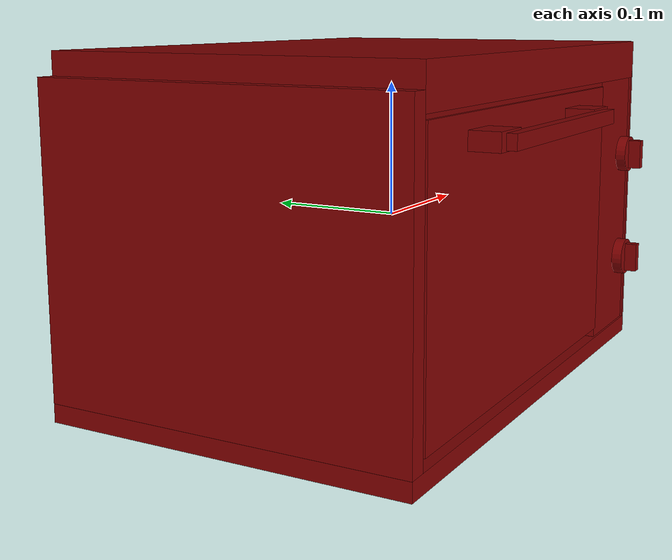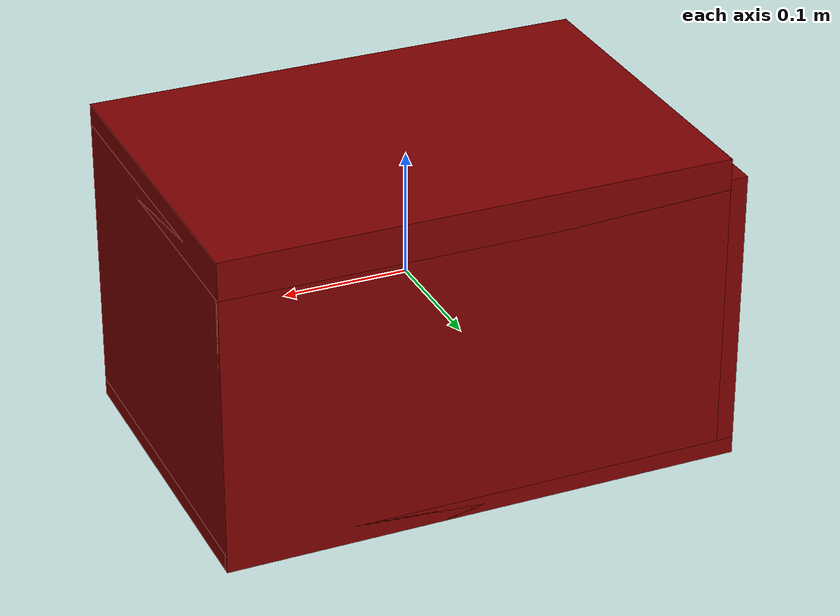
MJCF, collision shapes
<?xml version='1.0' encoding='UTF-8'?>
<mujoco model="model">
  <option timestep="0.002" gravity="0.0 0.0 -9.81"/>
  <compiler angle="radian"/>
  <asset>
    <mesh file="visuals/door.obj" name="door_vis"/>
    <mesh file="visuals/knob_temp.obj" name="knob_temp_vis"/>
    <mesh file="visuals/knob_time.obj" name="knob_time_vis"/>
    <mesh file="visuals/rack0.obj" name="rack0_vis"/>
    <mesh file="visuals/Body001.obj" name="Body001_vis"/>
    <mesh file="visuals/window.obj" name="window_vis"/>
    <texture file="visuals/T_BC001.png" name="Body001_material" type="2d"/>
    <material name="Body001_material" rgba="1 1 1 1.0" texture="Body001_material" shininess="0.2512328028678894" specular="2"/>
    <texture file="visuals/T_BC001.png" name="door_material" type="2d"/>
    <material name="door_material" rgba="1 1 1 1.0" texture="door_material" shininess="0.2512328028678894" specular="1"/>
    <texture file="visuals/T_BC001.png" name="window_material" type="2d"/>
    <material name="window_material" rgba="1 1 1 0.75" texture="window_material" shininess="0.2512328028678894" specular="0.3103448502657381"/>
    <texture file="visuals/T_BC001.png" name="knob_temp_material" type="2d"/>
    <material name="knob_temp_material" rgba="1 1 1 1.0" texture="knob_temp_material" shininess="0.2512328028678894" specular="1"/>
    <texture file="visuals/T_BC001.png" name="knob_time_material" type="2d"/>
    <material name="knob_time_material" rgba="1 1 1 1.0" texture="knob_time_material" shininess="0.2512328028678894" specular="1"/>
    <texture file="visuals/T_BC001.png" name="rack0_material" type="2d"/>
    <material name="rack0_material" rgba="1 1 1 1.0" texture="rack0_material" shininess="0.1" specular="3"/>
  </asset>
  <default>
    <default class="visual">
      <geom conaffinity="0" contype="0" group="1" type="mesh"/>
    </default>
    <default class="collision">
      <geom group="0" rgba="0.5 0 0 0.5"/>
    </default>
    <default class="spawn">
      <geom group="0" rgba="1 1 1 0.5" contype="0" conaffinity="0"/>
      <site group="0" rgba="1 1 1 0.5"/>
    </default>
    <default class="region">
      <geom group="1" conaffinity="0" contype="0" rgba="0 1 0 0"/>
    </default>
  </default>
  <worldbody>
    <body>
      <body name="object">
        <geom mesh="Body001_vis" type="mesh" solimp="0.998 0.998 0.001" solref="0.001 1" friction="0.95 0.3 0.1" class="visual" material="Body001_material"/>
        <geom class="collision" type="box" pos="-0.19996748864650726 0.014820121228694916 -0.0017713289707899094" size="0.006872917525470257 0.1380470246076584 0.1117958128452301" quat="1.0 0.0 0.0 0.0"/>
        <geom class="collision" type="box" pos="0.20504964888095856 0.014820121228694916 -0.0017713289707899094" size="0.0017908348236232996 0.1380470246076584 0.11179578304290771" quat="1.0 0.0 0.0 0.0"/>
        <geom class="collision" type="box" pos="0.16603650152683258 0.012244809418916702 -0.001771334558725357" size="0.03722234070301056 0.1337968111038208 0.11179576069116592" quat="1.0 0.0 0.0 0.0"/>
        <geom class="collision" type="box" pos="0.006832923740148544 0.014820121228694916 0.11172142624855042" size="0.20000754296779633 0.1380470246076584 0.015136580914258957" quat="1.0 0.0 0.0 0.0"/>
        <geom class="collision" type="box" pos="0.006832923740148544 0.15100598335266113 -0.008513309061527252" size="0.20000754296779633 0.001861140364781022 0.11853767931461334" quat="1.0 0.0 0.0 0.0"/>
        <geom class="collision" type="box" pos="0.0008620992302894592 0.027619149535894394 0.11586510390043259" size="0.17700891196727753 0.10812178254127502 0.005841147620230913" quat="1.0 0.0 0.0 0.0"/>
        <geom class="collision" type="box" pos="3.3527612686157227e-08 0.014820121228694916 -0.12031829357147217" size="0.2068404108285904 0.1380470246076584 0.0067516714334487915" quat="1.0 0.0 0.0 0.0"/>
        <geom class="collision" type="box" pos="-0.19096924364566803 0.02845849096775055 -0.021467335522174835" size="0.002511232625693083 0.11970851570367813 0.0011179364519193769" quat="1.0 0.0 0.0 0.0"/>
        <geom class="collision" type="box" pos="0.12606173753738403 0.02845849096775055 -0.021467335522174835" size="0.002942856168374419 0.11970851570367813 0.0011179364519193769" quat="1.0 0.0 0.0 0.0"/>
        <body name="door">
          <joint axis="1.0 0.0 0.0" pos="-0.02899169921875 -0.12169170379638672 -0.11031129956245422" limited="true" name="door_joint" range="0.0 1.4707963267948966" type="hinge" damping="1" frictionloss="1" armature=".01" stiffness="0.25" springref="-0.5"/>
          <geom mesh="door_vis" type="mesh" solimp="0.998 0.998 0.001" solref="0.001 1" friction="0.95 0.3 0.1" class="visual" material="door_material"/>
          <geom class="collision" type="box" pos="-0.0319330096244812 -0.12198945134878159 -0.0061937659047544" size="0.1585216522216797 0.0013533681631088257 0.09918766468763351" quat="1.0 0.0 0.0 0.0" name="door_main"/>
          <geom class="collision" type="box" pos="-0.03293025493621826 -0.1480540633201599 0.07590055465698242" size="0.09564390778541565 0.00406538974493742 0.005290565546602011" quat="1.0 0.0 0.0 0.0" name="door_handle_main"/>
          <geom class="collision" type="box" pos="-0.12042461335659027 -0.13419899344444275 0.07618038356304169" size="0.01555483229458332 0.010972079820930958 0.006391073577105999" quat="1.0 0.0 0.0 0.0"/>
          <geom class="collision" type="box" pos="0.05319491773843765 -0.13419899344444275 0.07618038356304169" size="0.01555483229458332 0.010972079820930958 0.006391072180122137" quat="1.0 0.0 0.0 0.0"/>
          <body name="window">
            <geom mesh="window_vis" type="mesh" solimp="0.998 0.998 0.001" solref="0.001 1" friction="0.95 0.3 0.1" class="visual" material="window_material"/>
            <geom class="collision" type="box" pos="-0.03197433799505234 -0.12193150818347931 -0.006361823529005051" size="0.14959894120693207 0.0012954279081895947 0.0990196093916893" quat="1.0 0.0 0.0 0.0"/>
          </body>
        </body>
        <body name="knob_temp">
          <joint axis="0.0 1.0 0.0" pos="0.16768665611743927 -0.1363096386194229 0.03500434383749962" limited="true" name="knob_temp_joint" range="0.0 4.799655442984406" type="hinge" damping="0.05" armature="1" frictionloss="0.75"/>
          <geom mesh="knob_temp_vis" type="mesh" solimp="0.998 0.998 0.001" solref="0.001 1" friction="0.95 0.3 0.1" class="visual" material="knob_temp_material"/>
          <geom class="collision" type="cylinder" pos="0.16768665611743927 -0.13123619556427002 0.035649411380290985" size="0.014274309389293194 0.003862633602693677" quat="0.7071067094802856 0.70710688829422 0.0 0.0" friction="100 0.5 0.01"/>
          <geom class="collision" type="box" pos="0.16768665611743927 -0.13967591524124146 0.035649411380290985" size="0.0039178249426186085 0.004963623359799385 0.011389716528356075" quat="1.0 0.0 0.0 0.0" name="knob_temp_main" friction="100 0.5 0.01"/>
        </body>
        <body name="knob_time">
          <joint axis="0.0 1.0 0.0" pos="0.16768665611743927 -0.1363096386194229 -0.05063324421644211" limited="true" name="knob_time_joint" range="0.0 3.9269908169872414" type="hinge" damping="0.05" armature="1" frictionloss="0.75"/>
          <geom mesh="knob_time_vis" type="mesh" solimp="0.998 0.998 0.001" solref="0.001 1" friction="0.95 0.3 0.1" class="visual" material="knob_time_material"/>
          <geom class="collision" type="cylinder" pos="0.16768665611743927 -0.13123619556427002 -0.051278311759233475" size="0.014600664377212524 0.003950945567339659" quat="0.7071067094802856 0.70710688829422 0.0 0.0" friction="100 0.5 0.01"/>
          <geom class="collision" type="box" pos="0.16768665611743927 -0.13967591524124146 -0.051278311759233475" size="0.0039178249426186085 0.004963623359799385 0.011389716528356075" quat="1.9470718370939721e-07 -6.717942113709796e-08 1.0 1.3435884227419592e-07" name="knob_time_main" friction="100 0.5 0.01"/>
        </body>
        <body name="rack0">
          <geom class="region" name="reg_rack0" type="box" pos="-0.03266625851392746 0.028950881212949753 0.04057424934580922" size="0.15976006335020065 0.11894217303395271 0.055062541108578444"/>
          <joint axis="0.0 -1.0 0.0" pos="-0.03456540405750275 0.052454523742198944 -0.016298560425639153" limited="true" name="rack0_joint" range="0.0 0.2" type="slide" damping="1" frictionloss="1" armature=".01" stiffness="0.05"/>
          <geom mesh="rack0_vis" type="mesh" solimp="0.998 0.998 0.001" solref="0.001 1" friction="0.95 0.3 0.1" class="visual" material="rack0_material"/>
          <geom class="collision" type="box" pos="-0.03193099796772003 0.02917960286140442 -0.016713785007596016" size="0.15977057814598083 0.11824823170900345 0.002733142813667655" quat="1.0 0.0 0.0 0.0"/>
        </body>
        <geom class="region" name="reg_main" type="box" pos="3.725290298461914e-09 0.013249218463897705 0.0" size="0.20784050023555756 0.14061797952651978 0.12806997990608215"/>
      </body>
    </body>
  </worldbody>
  <actuator>
    <motor name="door_joint_actuator" joint="door_joint" gear="50"/>
    <motor name="knob_temp_joint_actuator" joint="knob_temp_joint" gear="50"/>
    <motor name="knob_time_joint_actuator" joint="knob_time_joint" gear="50"/>
    <motor name="rack0_joint_actuator" joint="rack0_joint" gear="50"/>
  </actuator>
</mujoco>
